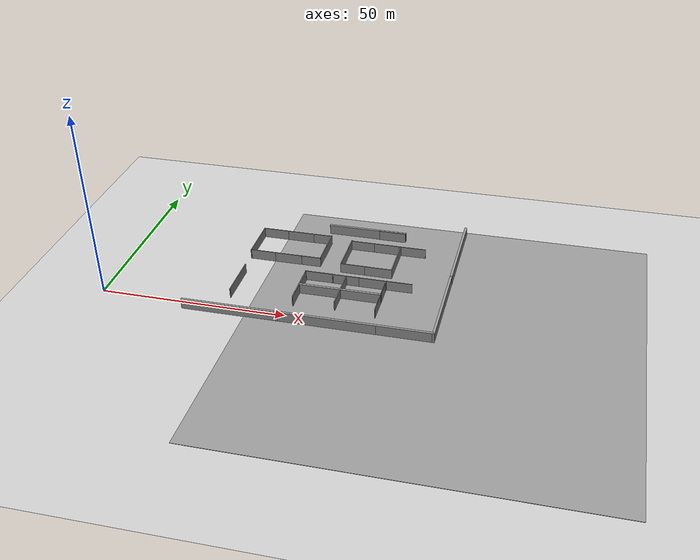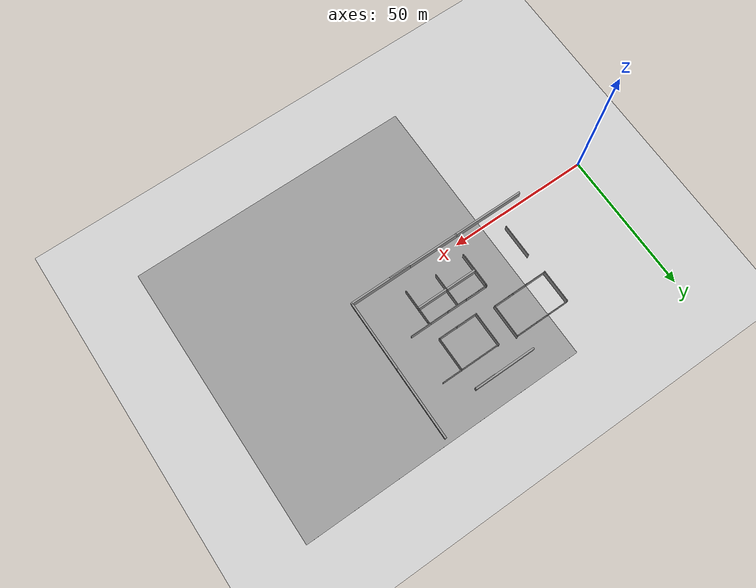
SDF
<sdf version="1.7">
 <world name="default">
  <model name="ground_plane">
   <static>1</static>
   <link name="link">
    <collision name="collision_collision">
     <geometry><plane><normal>0 0 1</normal><size>100 100</size></plane></geometry>
     <surface><friction><ode><mu>100</mu><mu2>50</mu2></ode></friction></surface>
    </collision>
    <visual name="visual">
     <cast_shadows>0</cast_shadows>
     <geometry><plane><normal>0 0 1</normal><size>100 100</size></plane></geometry>
     <material>
      <script><uri>file://media/materials/scripts/gazebo.material</uri><name>Gazebo/Grey</name></script>
     </material>
    </visual>
   </link>
  </model>
  <model name="grey_wall_long_0">
   <link name="link">
    <pose>0 0 1.37589 0 -0 0</pose>
    <inertial>
     <inertia><ixx>0</ixx><ixy>0</ixy><ixz>0</ixz><iyy>0</iyy><iyz>0</iyz><izz>0</izz></inertia>
     <mass>0</mass>
    </inertial>
    <visual name="visual">
     <cast_shadows>0</cast_shadows>
     <geometry><box><size>25.8815 0.642976 2.8</size></box></geometry>
     <material>
      <script>
       <uri>model://grey_wall/materials/scripts</uri>
       <uri>model://grey_wall/materials/textures</uri>
       <name>vrc/grey_wall</name>
      </script>
      <shader type="pixel"><normal_map>__default__</normal_map></shader>
      <ambient>1 1 1 1</ambient>
      <diffuse>1 1 1 1</diffuse>
      <specular>0 0 0 1</specular>
      <emissive>0 0 0 1</emissive>
     </material>
    </visual>
    <collision name="collision_collision">
     <geometry><box><size>25.8815 0.642976 2.8</size></box></geometry>
     <surface>
      <friction>
       <ode><mu>1</mu><mu2>1</mu2><fdir1>0 0 0</fdir1><slip1>0</slip1><slip2>0</slip2></ode>
       <torsional>
        <coefficient>1</coefficient>
        <patch_radius>0</patch_radius>
        <surface_radius>0</surface_radius>
        <use_patch_radius>1</use_patch_radius>
        <ode><slip>0</slip></ode>
       </torsional>
      </friction>
      <bounce><restitution_coefficient>0</restitution_coefficient><threshold>1e+06</threshold></bounce>
      <contact>
       <collide_without_contact>0</collide_without_contact>
       <collide_without_contact_bitmask>1</collide_without_contact_bitmask>
       <collide_bitmask>1</collide_bitmask>
       <ode>
        <soft_cfm>0</soft_cfm>
        <soft_erp>0.2</soft_erp>
        <kp>1e+13</kp>
        <kd>1</kd>
        <max_vel>0.01</max_vel>
        <min_depth>0</min_depth>
       </ode>
       <bullet>
        <split_impulse>1</split_impulse>
        <split_impulse_penetration_threshold>-0.01</split_impulse_penetration_threshold>
        <soft_cfm>0</soft_cfm>
        <soft_erp>0.2</soft_erp>
        <kp>1e+13</kp>
        <kd>1</kd>
       </bullet>
      </contact>
     </surface>
    </collision>
   </link>
   <static>1</static>
   <pose>35.9605 -2.39418 0 0 -0 0</pose>
  </model>
  <model name="grey_wall_long_1">
   <link name="link">
    <pose>0 0 1.37589 0 -0 0</pose>
    <inertial>
     <inertia><ixx>0</ixx><ixy>0</ixy><ixz>0</ixz><iyy>0</iyy><iyz>0</iyz><izz>0</izz></inertia>
     <mass>0</mass>
    </inertial>
    <visual name="visual">
     <cast_shadows>0</cast_shadows>
     <geometry><box><size>25.8815 0.642976 2.8</size></box></geometry>
     <material>
      <script>
       <uri>model://grey_wall/materials/scripts</uri>
       <uri>model://grey_wall/materials/textures</uri>
       <name>vrc/grey_wall</name>
      </script>
      <shader type="pixel"><normal_map>__default__</normal_map></shader>
      <ambient>1 1 1 1</ambient>
      <diffuse>1 1 1 1</diffuse>
      <specular>0 0 0 1</specular>
      <emissive>0 0 0 1</emissive>
     </material>
    </visual>
    <collision name="collision_collision">
     <geometry><box><size>25.8815 0.642976 2.8</size></box></geometry>
     <surface>
      <friction>
       <ode><mu>1</mu><mu2>1</mu2><fdir1>0 0 0</fdir1><slip1>0</slip1><slip2>0</slip2></ode>
       <torsional>
        <coefficient>1</coefficient>
        <patch_radius>0</patch_radius>
        <surface_radius>0</surface_radius>
        <use_patch_radius>1</use_patch_radius>
        <ode><slip>0</slip></ode>
       </torsional>
      </friction>
      <bounce><restitution_coefficient>0</restitution_coefficient><threshold>1e+06</threshold></bounce>
      <contact>
       <collide_without_contact>0</collide_without_contact>
       <collide_without_contact_bitmask>1</collide_without_contact_bitmask>
       <collide_bitmask>1</collide_bitmask>
       <ode>
        <soft_cfm>0</soft_cfm>
        <soft_erp>0.2</soft_erp>
        <kp>1e+13</kp>
        <kd>1</kd>
        <max_vel>0.01</max_vel>
        <min_depth>0</min_depth>
       </ode>
       <bullet>
        <split_impulse>1</split_impulse>
        <split_impulse_penetration_threshold>-0.01</split_impulse_penetration_threshold>
        <soft_cfm>0</soft_cfm>
        <soft_erp>0.2</soft_erp>
        <kp>1e+13</kp>
        <kd>1</kd>
       </bullet>
      </contact>
     </surface>
    </collision>
   </link>
   <static>1</static>
   <pose>61.3257 -2.37865 0 0 -0 0</pose>
  </model>
  <model name="ground_plane_1">
   <static>1</static>
   <link name="link">
    <collision name="collision_collision">
     <geometry><plane><normal>0 0 1</normal><size>100 100</size></plane></geometry>
     <surface><friction><ode><mu>100</mu><mu2>50</mu2></ode></friction></surface>
    </collision>
    <visual name="visual">
     <cast_shadows>0</cast_shadows>
     <geometry><plane><normal>0 0 1</normal><size>100 100</size></plane></geometry>
     <material>
      <script><uri>file://media/materials/scripts/gazebo.material</uri><name>Gazebo/Grey</name></script>
     </material>
    </visual>
   </link>
   <pose>89.798 0.232818 0 0 -0 0</pose>
  </model>
  <model name="grew_wall_long_vertial_1_clone_clone_1_clone">
   <model name="grey_wall_long">
    <link name="link">
     <pose>0 0 1.37589 0 -0 0</pose>
     <inertial>
      <inertia><ixx>0</ixx><ixy>0</ixy><ixz>0</ixz><iyy>0</iyy><iyz>0</iyz><izz>0</izz></inertia>
      <mass>0</mass>
     </inertial>
     <visual name="visual">
      <cast_shadows>0</cast_shadows>
      <geometry><box><size>25.8815 0.642976 2.8</size></box></geometry>
      <material>
       <script>
        <uri>model://grey_wall/materials/scripts</uri>
        <uri>model://grey_wall/materials/textures</uri>
        <name>vrc/grey_wall</name>
       </script>
       <shader type="pixel"><normal_map>__default__</normal_map></shader>
       <ambient>1 1 1 1</ambient>
       <diffuse>1 1 1 1</diffuse>
       <specular>0 0 0 1</specular>
       <emissive>0 0 0 1</emissive>
      </material>
     </visual>
     <collision name="collision_collision">
      <geometry><box><size>25.8815 0.642976 2.8</size></box></geometry>
      <surface>
       <friction>
        <ode><mu>1</mu><mu2>1</mu2><fdir1>0 0 0</fdir1><slip1>0</slip1><slip2>0</slip2></ode>
        <torsional>
         <coefficient>1</coefficient>
         <patch_radius>0</patch_radius>
         <surface_radius>0</surface_radius>
         <use_patch_radius>1</use_patch_radius>
         <ode><slip>0</slip></ode>
        </torsional>
       </friction>
       <bounce><restitution_coefficient>0</restitution_coefficient><threshold>1e+06</threshold></bounce>
       <contact>
        <collide_without_contact>0</collide_without_contact>
        <collide_without_contact_bitmask>1</collide_without_contact_bitmask>
        <collide_bitmask>1</collide_bitmask>
        <ode>
         <soft_cfm>0</soft_cfm>
         <soft_erp>0.2</soft_erp>
         <kp>1e+13</kp>
         <kd>1</kd>
         <max_vel>0.01</max_vel>
         <min_depth>0</min_depth>
        </ode>
        <bullet>
         <split_impulse>1</split_impulse>
         <split_impulse_penetration_threshold>-0.01</split_impulse_penetration_threshold>
         <soft_cfm>0</soft_cfm>
         <soft_erp>0.2</soft_erp>
         <kp>1e+13</kp>
         <kd>1</kd>
        </bullet>
       </contact>
      </surface>
     </collision>
    </link>
    <static>1</static>
    <pose>1e-06 -0 0 0 -0 1.57003</pose>
   </model>
   <static>0</static>
   <pose>88.7842 10.2506 0 0 -0 0</pose>
  </model>
  <model name="grew_wall_long_vertial_1_clone_clone_1_clone_0">
   <model name="grey_wall_long">
    <link name="link">
     <pose>0 0 1.37589 0 -0 0</pose>
     <inertial>
      <inertia><ixx>0</ixx><ixy>0</ixy><ixz>0</ixz><iyy>0</iyy><iyz>0</iyz><izz>0</izz></inertia>
      <mass>0</mass>
     </inertial>
     <visual name="visual">
      <cast_shadows>0</cast_shadows>
      <geometry><box><size>25.8815 0.642976 2.8</size></box></geometry>
      <material>
       <script>
        <uri>model://grey_wall/materials/scripts</uri>
        <uri>model://grey_wall/materials/textures</uri>
        <name>vrc/grey_wall</name>
       </script>
       <shader type="pixel"><normal_map>__default__</normal_map></shader>
       <ambient>1 1 1 1</ambient>
       <diffuse>1 1 1 1</diffuse>
       <specular>0 0 0 1</specular>
       <emissive>0 0 0 1</emissive>
      </material>
     </visual>
     <collision name="collision_collision">
      <geometry><box><size>25.8815 0.642976 2.8</size></box></geometry>
      <surface>
       <friction>
        <ode><mu>1</mu><mu2>1</mu2><fdir1>0 0 0</fdir1><slip1>0</slip1><slip2>0</slip2></ode>
        <torsional>
         <coefficient>1</coefficient>
         <patch_radius>0</patch_radius>
         <surface_radius>0</surface_radius>
         <use_patch_radius>1</use_patch_radius>
         <ode><slip>0</slip></ode>
        </torsional>
       </friction>
       <bounce><restitution_coefficient>0</restitution_coefficient><threshold>1e+06</threshold></bounce>
       <contact>
        <collide_without_contact>0</collide_without_contact>
        <collide_without_contact_bitmask>1</collide_without_contact_bitmask>
        <collide_bitmask>1</collide_bitmask>
        <ode>
         <soft_cfm>0</soft_cfm>
         <soft_erp>0.2</soft_erp>
         <kp>1e+13</kp>
         <kd>1</kd>
         <max_vel>0.01</max_vel>
         <min_depth>0</min_depth>
        </ode>
        <bullet>
         <split_impulse>1</split_impulse>
         <split_impulse_penetration_threshold>-0.01</split_impulse_penetration_threshold>
         <soft_cfm>0</soft_cfm>
         <soft_erp>0.2</soft_erp>
         <kp>1e+13</kp>
         <kd>1</kd>
        </bullet>
       </contact>
      </surface>
     </collision>
    </link>
    <static>1</static>
    <pose>1e-06 -0 0 0 -0 1.57003</pose>
   </model>
   <static>0</static>
   <pose>88.8179 35.6019 0 0 -0 0</pose>
  </model>
  <model name="grey_wall_long_term_clone_0_clone_0">
   <link name="link">
    <pose>-1.74587 -0.378849 1.37589 0 -0 0</pose>
    <inertial>
     <inertia><ixx>0</ixx><ixy>0</ixy><ixz>0</ixz><iyy>0</iyy><iyz>0</iyz><izz>0</izz></inertia>
     <mass>0</mass>
    </inertial>
    <visual name="visual">
     <cast_shadows>0</cast_shadows>
     <geometry><box><size>22.1596 0.642976 2.8</size></box></geometry>
     <material>
      <script>
       <uri>model://grey_wall/materials/scripts</uri>
       <uri>model://grey_wall/materials/textures</uri>
       <name>vrc/grey_wall</name>
      </script>
      <shader type="pixel"><normal_map>__default__</normal_map></shader>
      <ambient>1 1 1 1</ambient>
      <diffuse>1 1 1 1</diffuse>
      <specular>0 0 0 1</specular>
      <emissive>0 0 0 1</emissive>
     </material>
    </visual>
    <collision name="collision_collision">
     <geometry><box><size>22.1596 0.642976 2.8</size></box></geometry>
     <surface>
      <friction>
       <ode><mu>1</mu><mu2>1</mu2><fdir1>0 0 0</fdir1><slip1>0</slip1><slip2>0</slip2></ode>
       <torsional>
        <coefficient>1</coefficient>
        <patch_radius>0</patch_radius>
        <surface_radius>0</surface_radius>
        <use_patch_radius>1</use_patch_radius>
        <ode><slip>0</slip></ode>
       </torsional>
      </friction>
      <bounce><restitution_coefficient>0</restitution_coefficient><threshold>1e+06</threshold></bounce>
      <contact>
       <collide_without_contact>0</collide_without_contact>
       <collide_without_contact_bitmask>1</collide_without_contact_bitmask>
       <collide_bitmask>1</collide_bitmask>
       <ode>
        <soft_cfm>0</soft_cfm>
        <soft_erp>0.2</soft_erp>
        <kp>1e+13</kp>
        <kd>1</kd>
        <max_vel>0.01</max_vel>
        <min_depth>0</min_depth>
       </ode>
       <bullet>
        <split_impulse>1</split_impulse>
        <split_impulse_penetration_threshold>-0.01</split_impulse_penetration_threshold>
        <soft_cfm>0</soft_cfm>
        <soft_erp>0.2</soft_erp>
        <kp>1e+13</kp>
        <kd>1</kd>
       </bullet>
      </contact>
     </surface>
    </collision>
   </link>
   <static>1</static>
   <pose>79.4268 -1.97771 0 0 -0 0</pose>
  </model>
  <model name="grey_wall_12m_vertial_1_clone_0_clone_0_clone_1">
   <link name="link">
    <pose>0.289112 -0.003891 1.4 0 0 -1.5701</pose>
    <inertial>
     <inertia><ixx>0</ixx><ixy>0</ixy><ixz>0</ixz><iyy>0</iyy><iyz>0</iyz><izz>0</izz></inertia>
     <mass>0</mass>
    </inertial>
    <visual name="visual">
     <cast_shadows>0</cast_shadows>
     <geometry><box><size>12.0527 0.2 2.8</size></box></geometry>
     <material>
      <script>
       <uri>model://grey_wall/materials/scripts</uri>
       <uri>model://grey_wall/materials/textures</uri>
       <name>vrc/grey_wall</name>
      </script>
      <shader type="pixel"/>
      <ambient>1 1 1 1</ambient>
      <diffuse>1 1 1 1</diffuse>
      <specular>0 0 0 1</specular>
      <emissive>0 0 0 1</emissive>
     </material>
    </visual>
    <collision name="collision_collision">
     <geometry><box><size>12.0527 0.2 2.8</size></box></geometry>
     <surface>
      <friction>
       <ode><mu>1</mu><mu2>1</mu2><fdir1>0 0 0</fdir1><slip1>0</slip1><slip2>0</slip2></ode>
       <torsional>
        <coefficient>1</coefficient>
        <patch_radius>0</patch_radius>
        <surface_radius>0</surface_radius>
        <use_patch_radius>1</use_patch_radius>
        <ode><slip>0</slip></ode>
       </torsional>
      </friction>
      <bounce><restitution_coefficient>0</restitution_coefficient><threshold>1e+06</threshold></bounce>
      <contact>
       <collide_without_contact>0</collide_without_contact>
       <collide_without_contact_bitmask>1</collide_without_contact_bitmask>
       <collide_bitmask>1</collide_bitmask>
       <ode>
        <soft_cfm>0</soft_cfm>
        <soft_erp>0.2</soft_erp>
        <kp>1e+13</kp>
        <kd>1</kd>
        <max_vel>0.01</max_vel>
        <min_depth>0</min_depth>
       </ode>
       <bullet>
        <split_impulse>1</split_impulse>
        <split_impulse_penetration_threshold>-0.01</split_impulse_penetration_threshold>
        <soft_cfm>0</soft_cfm>
        <soft_erp>0.2</soft_erp>
        <kp>1e+13</kp>
        <kd>1</kd>
       </bullet>
      </contact>
     </surface>
    </collision>
   </link>
   <static>1</static>
   <pose>50.3724 10.4401 0 0 -0 0</pose>
  </model>
  <model name="grey_wall_12m_vertial_2_clone_clone_1_clone_1">
   <link name="link">
    <pose>0.289112 -0.003891 1.4 0 0 -1.5701</pose>
    <inertial>
     <inertia><ixx>0</ixx><ixy>0</ixy><ixz>0</ixz><iyy>0</iyy><iyz>0</iyz><izz>0</izz></inertia>
     <mass>0</mass>
    </inertial>
    <visual name="visual">
     <cast_shadows>0</cast_shadows>
     <geometry><box><size>12.0527 0.2 2.8</size></box></geometry>
     <material>
      <script>
       <uri>model://grey_wall/materials/scripts</uri>
       <uri>model://grey_wall/materials/textures</uri>
       <name>vrc/grey_wall</name>
      </script>
      <shader type="pixel"/>
      <ambient>1 1 1 1</ambient>
      <diffuse>1 1 1 1</diffuse>
      <specular>0 0 0 1</specular>
      <emissive>0 0 0 1</emissive>
     </material>
    </visual>
    <collision name="collision_collision">
     <geometry><box><size>12.0527 0.2 2.8</size></box></geometry>
     <surface>
      <friction>
       <ode><mu>1</mu><mu2>1</mu2><fdir1>0 0 0</fdir1><slip1>0</slip1><slip2>0</slip2></ode>
       <torsional>
        <coefficient>1</coefficient>
        <patch_radius>0</patch_radius>
        <surface_radius>0</surface_radius>
        <use_patch_radius>1</use_patch_radius>
        <ode><slip>0</slip></ode>
       </torsional>
      </friction>
      <bounce><restitution_coefficient>0</restitution_coefficient><threshold>1e+06</threshold></bounce>
      <contact>
       <collide_without_contact>0</collide_without_contact>
       <collide_without_contact_bitmask>1</collide_without_contact_bitmask>
       <collide_bitmask>1</collide_bitmask>
       <ode>
        <soft_cfm>0</soft_cfm>
        <soft_erp>0.2</soft_erp>
        <kp>1e+13</kp>
        <kd>1</kd>
        <max_vel>0.01</max_vel>
        <min_depth>0</min_depth>
       </ode>
       <bullet>
        <split_impulse>1</split_impulse>
        <split_impulse_penetration_threshold>-0.01</split_impulse_penetration_threshold>
        <soft_cfm>0</soft_cfm>
        <soft_erp>0.2</soft_erp>
        <kp>1e+13</kp>
        <kd>1</kd>
       </bullet>
      </contact>
     </surface>
    </collision>
   </link>
   <static>1</static>
   <pose>72.2328 9.92889 0 0 -0 0</pose>
  </model>
  <model name="grey_wall_12m_vertial_2_clone_clone_1_clone_2">
   <link name="link">
    <pose>0.289112 -0.003891 1.4 0 0 -1.5701</pose>
    <inertial>
     <inertia><ixx>0</ixx><ixy>0</ixy><ixz>0</ixz><iyy>0</iyy><iyz>0</iyz><izz>0</izz></inertia>
     <mass>0</mass>
    </inertial>
    <visual name="visual">
     <cast_shadows>0</cast_shadows>
     <geometry><box><size>12.0527 0.2 2.8</size></box></geometry>
     <material>
      <script>
       <uri>model://grey_wall/materials/scripts</uri>
       <uri>model://grey_wall/materials/textures</uri>
       <name>vrc/grey_wall</name>
      </script>
      <shader type="pixel"/>
      <ambient>1 1 1 1</ambient>
      <diffuse>1 1 1 1</diffuse>
      <specular>0 0 0 1</specular>
      <emissive>0 0 0 1</emissive>
     </material>
    </visual>
    <collision name="collision_collision">
     <geometry><box><size>12.0527 0.2 2.8</size></box></geometry>
     <surface>
      <friction>
       <ode><mu>1</mu><mu2>1</mu2><fdir1>0 0 0</fdir1><slip1>0</slip1><slip2>0</slip2></ode>
       <torsional>
        <coefficient>1</coefficient>
        <patch_radius>0</patch_radius>
        <surface_radius>0</surface_radius>
        <use_patch_radius>1</use_patch_radius>
        <ode><slip>0</slip></ode>
       </torsional>
      </friction>
      <bounce><restitution_coefficient>0</restitution_coefficient><threshold>1e+06</threshold></bounce>
      <contact>
       <collide_without_contact>0</collide_without_contact>
       <collide_without_contact_bitmask>1</collide_without_contact_bitmask>
       <collide_bitmask>1</collide_bitmask>
       <ode>
        <soft_cfm>0</soft_cfm>
        <soft_erp>0.2</soft_erp>
        <kp>1e+13</kp>
        <kd>1</kd>
        <max_vel>0.01</max_vel>
        <min_depth>0</min_depth>
       </ode>
       <bullet>
        <split_impulse>1</split_impulse>
        <split_impulse_penetration_threshold>-0.01</split_impulse_penetration_threshold>
        <soft_cfm>0</soft_cfm>
        <soft_erp>0.2</soft_erp>
        <kp>1e+13</kp>
        <kd>1</kd>
       </bullet>
      </contact>
     </surface>
    </collision>
   </link>
   <static>1</static>
   <pose>72.2088 10.9656 0 0 -0 0</pose>
  </model>
  <model name="grey_wall_12m_vertial_2_clone_clone_1_clone_3">
   <link name="link">
    <pose>0.289112 -0.003891 1.4 0 0 -1.5701</pose>
    <inertial>
     <inertia><ixx>0</ixx><ixy>0</ixy><ixz>0</ixz><iyy>0</iyy><iyz>0</iyz><izz>0</izz></inertia>
     <mass>0</mass>
    </inertial>
    <visual name="visual">
     <cast_shadows>0</cast_shadows>
     <geometry><box><size>12.0527 0.2 2.8</size></box></geometry>
     <material>
      <script>
       <uri>model://grey_wall/materials/scripts</uri>
       <uri>model://grey_wall/materials/textures</uri>
       <name>vrc/grey_wall</name>
      </script>
      <shader type="pixel"/>
      <ambient>1 1 1 1</ambient>
      <diffuse>1 1 1 1</diffuse>
      <specular>0 0 0 1</specular>
      <emissive>0 0 0 1</emissive>
     </material>
    </visual>
    <collision name="collision_collision">
     <geometry><box><size>12.0527 0.2 2.8</size></box></geometry>
     <surface>
      <friction>
       <ode><mu>1</mu><mu2>1</mu2><fdir1>0 0 0</fdir1><slip1>0</slip1><slip2>0</slip2></ode>
       <torsional>
        <coefficient>1</coefficient>
        <patch_radius>0</patch_radius>
        <surface_radius>0</surface_radius>
        <use_patch_radius>1</use_patch_radius>
        <ode><slip>0</slip></ode>
       </torsional>
      </friction>
      <bounce><restitution_coefficient>0</restitution_coefficient><threshold>1e+06</threshold></bounce>
      <contact>
       <collide_without_contact>0</collide_without_contact>
       <collide_without_contact_bitmask>1</collide_without_contact_bitmask>
       <collide_bitmask>1</collide_bitmask>
       <ode>
        <soft_cfm>0</soft_cfm>
        <soft_erp>0.2</soft_erp>
        <kp>1e+13</kp>
        <kd>1</kd>
        <max_vel>0.01</max_vel>
        <min_depth>0</min_depth>
       </ode>
       <bullet>
        <split_impulse>1</split_impulse>
        <split_impulse_penetration_threshold>-0.01</split_impulse_penetration_threshold>
        <soft_cfm>0</soft_cfm>
        <soft_erp>0.2</soft_erp>
        <kp>1e+13</kp>
        <kd>1</kd>
       </bullet>
      </contact>
     </surface>
    </collision>
   </link>
   <static>1</static>
   <pose>72.4741 28.4422 0 0 -0 0</pose>
  </model>
  <model name="grey_wall_0_clone_clone_clone_4_clone_1">
   <static>1</static>
   <link name="link">
    <pose>0 0 1.4 0 -0 0</pose>
    <collision name="collision_collision"><geometry><box><size>7.5 0.2 2.8</size></box></geometry></collision>
    <visual name="visual">
     <cast_shadows>0</cast_shadows>
     <geometry><box><size>7.5 0.2 2.8</size></box></geometry>
     <material>
      <script>
       <uri>model://grey_wall/materials/scripts</uri>
       <uri>model://grey_wall/materials/textures</uri>
       <name>vrc/grey_wall</name>
      </script>
     </material>
    </visual>
   </link>
   <pose>68.9422 41.2905 0 0 -0 0</pose>
  </model>
  <model name="grey_wall_0_clone_clone_clone_4_clone_2">
   <static>1</static>
   <link name="link">
    <pose>0 0 1.4 0 -0 0</pose>
    <collision name="collision_collision"><geometry><box><size>7.5 0.2 2.8</size></box></geometry></collision>
    <visual name="visual">
     <cast_shadows>0</cast_shadows>
     <geometry><box><size>7.5 0.2 2.8</size></box></geometry>
     <material>
      <script>
       <uri>model://grey_wall/materials/scripts</uri>
       <uri>model://grey_wall/materials/textures</uri>
       <name>vrc/grey_wall</name>
      </script>
     </material>
    </visual>
   </link>
   <pose>69.0526 34.3787 0 0 -0 0</pose>
  </model>
  <model name="grey_wall_0_clone_clone_clone_4_clone_3">
   <static>1</static>
   <link name="link">
    <pose>0 0 1.4 0 -0 0</pose>
    <collision name="collision_collision"><geometry><box><size>7.5 0.2 2.8</size></box></geometry></collision>
    <visual name="visual">
     <cast_shadows>0</cast_shadows>
     <geometry><box><size>7.5 0.2 2.8</size></box></geometry>
     <material>
      <script>
       <uri>model://grey_wall/materials/scripts</uri>
       <uri>model://grey_wall/materials/textures</uri>
       <name>vrc/grey_wall</name>
      </script>
     </material>
    </visual>
   </link>
   <pose>69.0684 22.4925 0 0 -0 0</pose>
  </model>
  <model name="grey_wall_0_clone_clone_clone_4_clone_4">
   <static>1</static>
   <link name="link">
    <pose>0 0 1.4 0 -0 0</pose>
    <collision name="collision_collision"><geometry><box><size>7.5 0.2 2.8</size></box></geometry></collision>
    <visual name="visual">
     <cast_shadows>0</cast_shadows>
     <geometry><box><size>7.5 0.2 2.8</size></box></geometry>
     <material>
      <script>
       <uri>model://grey_wall/materials/scripts</uri>
       <uri>model://grey_wall/materials/textures</uri>
       <name>vrc/grey_wall</name>
      </script>
     </material>
    </visual>
   </link>
   <pose>68.8459 16.9594 0 0 -0 0</pose>
  </model>
  <model name="grey_wall_12m_vertial_1_clone_0_clone_1_clone">
   <link name="link">
    <pose>0.289112 -0.003891 1.4 0 0 -1.5701</pose>
    <inertial>
     <inertia><ixx>0</ixx><ixy>0</ixy><ixz>0</ixz><iyy>0</iyy><iyz>0</iyz><izz>0</izz></inertia>
     <mass>0</mass>
    </inertial>
    <visual name="visual">
     <cast_shadows>0</cast_shadows>
     <geometry><box><size>12.0527 0.2 2.8</size></box></geometry>
     <material>
      <script>
       <uri>model://grey_wall/materials/scripts</uri>
       <uri>model://grey_wall/materials/textures</uri>
       <name>vrc/grey_wall</name>
      </script>
      <shader type="pixel"/>
      <ambient>1 1 1 1</ambient>
      <diffuse>1 1 1 1</diffuse>
      <specular>0 0 0 1</specular>
      <emissive>0 0 0 1</emissive>
     </material>
    </visual>
    <collision name="collision_collision">
     <geometry><box><size>12.0527 0.2 2.8</size></box></geometry>
     <surface>
      <friction>
       <ode><mu>1</mu><mu2>1</mu2><fdir1>0 0 0</fdir1><slip1>0</slip1><slip2>0</slip2></ode>
       <torsional>
        <coefficient>1</coefficient>
        <patch_radius>0</patch_radius>
        <surface_radius>0</surface_radius>
        <use_patch_radius>1</use_patch_radius>
        <ode><slip>0</slip></ode>
       </torsional>
      </friction>
      <bounce><restitution_coefficient>0</restitution_coefficient><threshold>1e+06</threshold></bounce>
      <contact>
       <collide_without_contact>0</collide_without_contact>
       <collide_without_contact_bitmask>1</collide_without_contact_bitmask>
       <collide_bitmask>1</collide_bitmask>
       <ode>
        <soft_cfm>0</soft_cfm>
        <soft_erp>0.2</soft_erp>
        <kp>1e+13</kp>
        <kd>1</kd>
        <max_vel>0.01</max_vel>
        <min_depth>0</min_depth>
       </ode>
       <bullet>
        <split_impulse>1</split_impulse>
        <split_impulse_penetration_threshold>-0.01</split_impulse_penetration_threshold>
        <soft_cfm>0</soft_cfm>
        <soft_erp>0.2</soft_erp>
        <kp>1e+13</kp>
        <kd>1</kd>
       </bullet>
      </contact>
     </surface>
    </collision>
   </link>
   <static>1</static>
   <pose>33.4027 10.5536 0 0 -0 0</pose>
  </model>
  <model name="grey_wall_0_clone_clone_clone_4_clone_4_clone">
   <static>1</static>
   <link name="link">
    <pose>0 0 1.4 0 -0 0</pose>
    <collision name="collision_collision"><geometry><box><size>7.5 0.2 2.8</size></box></geometry></collision>
    <visual name="visual">
     <cast_shadows>0</cast_shadows>
     <geometry><box><size>7.5 0.2 2.8</size></box></geometry>
     <material>
      <script>
       <uri>model://grey_wall/materials/scripts</uri>
       <uri>model://grey_wall/materials/textures</uri>
       <name>vrc/grey_wall</name>
      </script>
     </material>
    </visual>
   </link>
   <pose>61.8348 16.9712 0 0 -0 0</pose>
  </model>
  <model name="grey_wall_0_clone_clone_clone_4_clone_4_clone_0">
   <static>1</static>
   <link name="link">
    <pose>0 0 1.4 0 -0 0</pose>
    <collision name="collision_collision"><geometry><box><size>7.5 0.2 2.8</size></box></geometry></collision>
    <visual name="visual">
     <cast_shadows>0</cast_shadows>
     <geometry><box><size>7.5 0.2 2.8</size></box></geometry>
     <material>
      <script>
       <uri>model://grey_wall/materials/scripts</uri>
       <uri>model://grey_wall/materials/textures</uri>
       <name>vrc/grey_wall</name>
      </script>
     </material>
    </visual>
   </link>
   <pose>54.7741 17.0436 0 0 -0 0</pose>
  </model>
  <model name="grey_wall_0_clone_clone_clone_4_clone_4_clone_1">
   <static>1</static>
   <link name="link">
    <pose>0 0 1.4 0 -0 0</pose>
    <collision name="collision_collision"><geometry><box><size>7.5 0.2 2.8</size></box></geometry></collision>
    <visual name="visual">
     <cast_shadows>0</cast_shadows>
     <geometry><box><size>7.5 0.2 2.8</size></box></geometry>
     <material>
      <script>
       <uri>model://grey_wall/materials/scripts</uri>
       <uri>model://grey_wall/materials/textures</uri>
       <name>vrc/grey_wall</name>
      </script>
     </material>
    </visual>
   </link>
   <pose>54.139 17.0107 0 0 -0 0</pose>
  </model>
  <model name="grey_wall_12m_vertial_1_clone_0_clone_0_clone_1_clone">
   <link name="link">
    <pose>0.289112 -0.003891 1.4 0 0 -1.5701</pose>
    <inertial>
     <inertia><ixx>0</ixx><ixy>0</ixy><ixz>0</ixz><iyy>0</iyy><iyz>0</iyz><izz>0</izz></inertia>
     <mass>0</mass>
    </inertial>
    <visual name="visual">
     <cast_shadows>0</cast_shadows>
     <geometry><box><size>12.0527 0.2 2.8</size></box></geometry>
     <material>
      <script>
       <uri>model://grey_wall/materials/scripts</uri>
       <uri>model://grey_wall/materials/textures</uri>
       <name>vrc/grey_wall</name>
      </script>
      <shader type="pixel"/>
      <ambient>1 1 1 1</ambient>
      <diffuse>1 1 1 1</diffuse>
      <specular>0 0 0 1</specular>
      <emissive>0 0 0 1</emissive>
     </material>
    </visual>
    <collision name="collision_collision">
     <geometry><box><size>12.0527 0.2 2.8</size></box></geometry>
     <surface>
      <friction>
       <ode><mu>1</mu><mu2>1</mu2><fdir1>0 0 0</fdir1><slip1>0</slip1><slip2>0</slip2></ode>
       <torsional>
        <coefficient>1</coefficient>
        <patch_radius>0</patch_radius>
        <surface_radius>0</surface_radius>
        <use_patch_radius>1</use_patch_radius>
        <ode><slip>0</slip></ode>
       </torsional>
      </friction>
      <bounce><restitution_coefficient>0</restitution_coefficient><threshold>1e+06</threshold></bounce>
      <contact>
       <collide_without_contact>0</collide_without_contact>
       <collide_without_contact_bitmask>1</collide_without_contact_bitmask>
       <collide_bitmask>1</collide_bitmask>
       <ode>
        <soft_cfm>0</soft_cfm>
        <soft_erp>0.2</soft_erp>
        <kp>1e+13</kp>
        <kd>1</kd>
        <max_vel>0.01</max_vel>
        <min_depth>0</min_depth>
       </ode>
       <bullet>
        <split_impulse>1</split_impulse>
        <split_impulse_penetration_threshold>-0.01</split_impulse_penetration_threshold>
        <soft_cfm>0</soft_cfm>
        <soft_erp>0.2</soft_erp>
        <kp>1e+13</kp>
        <kd>1</kd>
       </bullet>
      </contact>
     </surface>
    </collision>
   </link>
   <static>1</static>
   <pose>50.2512 11.1541 0 0 -0 0</pose>
  </model>
  <model name="grey_wall_12m_vertial_2_clone_clone_2_clone_0">
   <link name="link">
    <pose>0.289112 -0.003891 1.4 0 0 -1.5701</pose>
    <inertial>
     <inertia><ixx>0</ixx><ixy>0</ixy><ixz>0</ixz><iyy>0</iyy><iyz>0</iyz><izz>0</izz></inertia>
     <mass>0</mass>
    </inertial>
    <visual name="visual">
     <cast_shadows>0</cast_shadows>
     <geometry><box><size>12.0527 0.2 2.8</size></box></geometry>
     <material>
      <script>
       <uri>model://grey_wall/materials/scripts</uri>
       <uri>model://grey_wall/materials/textures</uri>
       <name>vrc/grey_wall</name>
      </script>
      <shader type="pixel"/>
      <ambient>1 1 1 1</ambient>
      <diffuse>1 1 1 1</diffuse>
      <specular>0 0 0 1</specular>
      <emissive>0 0 0 1</emissive>
     </material>
    </visual>
    <collision name="collision_collision">
     <geometry><box><size>12.0527 0.2 2.8</size></box></geometry>
     <surface>
      <friction>
       <ode><mu>1</mu><mu2>1</mu2><fdir1>0 0 0</fdir1><slip1>0</slip1><slip2>0</slip2></ode>
       <torsional>
        <coefficient>1</coefficient>
        <patch_radius>0</patch_radius>
        <surface_radius>0</surface_radius>
        <use_patch_radius>1</use_patch_radius>
        <ode><slip>0</slip></ode>
       </torsional>
      </friction>
      <bounce><restitution_coefficient>0</restitution_coefficient><threshold>1e+06</threshold></bounce>
      <contact>
       <collide_without_contact>0</collide_without_contact>
       <collide_without_contact_bitmask>1</collide_without_contact_bitmask>
       <collide_bitmask>1</collide_bitmask>
       <ode>
        <soft_cfm>0</soft_cfm>
        <soft_erp>0.2</soft_erp>
        <kp>1e+13</kp>
        <kd>1</kd>
        <max_vel>0.01</max_vel>
        <min_depth>0</min_depth>
       </ode>
       <bullet>
        <split_impulse>1</split_impulse>
        <split_impulse_penetration_threshold>-0.01</split_impulse_penetration_threshold>
        <soft_cfm>0</soft_cfm>
        <soft_erp>0.2</soft_erp>
        <kp>1e+13</kp>
        <kd>1</kd>
       </bullet>
      </contact>
     </surface>
    </collision>
   </link>
   <static>1</static>
   <pose>58.4644 28.6618 0 0 -0 0</pose>
  </model>
  <model name="grey_wall_0_clone_clone_clone_4_clone_2_clone">
   <static>1</static>
   <link name="link">
    <pose>0 0 1.4 0 -0 0</pose>
    <collision name="collision_collision"><geometry><box><size>7.5 0.2 2.8</size></box></geometry></collision>
    <visual name="visual">
     <cast_shadows>0</cast_shadows>
     <geometry><box><size>7.5 0.2 2.8</size></box></geometry>
     <material>
      <script>
       <uri>model://grey_wall/materials/scripts</uri>
       <uri>model://grey_wall/materials/textures</uri>
       <name>vrc/grey_wall</name>
      </script>
     </material>
    </visual>
   </link>
   <pose>62.5255 34.3852 0 0 -0 0</pose>
  </model>
  <model name="grey_wall_0_clone_clone_clone_4_clone_3_clone">
   <static>1</static>
   <link name="link">
    <pose>0 0 1.4 0 -0 0</pose>
    <collision name="collision_collision"><geometry><box><size>7.5 0.2 2.8</size></box></geometry></collision>
    <visual name="visual">
     <cast_shadows>0</cast_shadows>
     <geometry><box><size>7.5 0.2 2.8</size></box></geometry>
     <material>
      <script>
       <uri>model://grey_wall/materials/scripts</uri>
       <uri>model://grey_wall/materials/textures</uri>
       <name>vrc/grey_wall</name>
      </script>
     </material>
    </visual>
   </link>
   <pose>62.392 22.5411 0 0 -0 0</pose>
  </model>
  <model name="grey_wall_long_term_clone_0_clone_1">
   <link name="link">
    <pose>-1.74587 -0.378849 1.37589 0 -0 0</pose>
    <inertial>
     <inertia><ixx>0</ixx><ixy>0</ixy><ixz>0</ixz><iyy>0</iyy><iyz>0</iyz><izz>0</izz></inertia>
     <mass>0</mass>
    </inertial>
    <visual name="visual">
     <cast_shadows>0</cast_shadows>
     <geometry><box><size>22.1596 0.642976 2.8</size></box></geometry>
     <material>
      <script>
       <uri>model://grey_wall/materials/scripts</uri>
       <uri>model://grey_wall/materials/textures</uri>
       <name>vrc/grey_wall</name>
      </script>
      <shader type="pixel"><normal_map>__default__</normal_map></shader>
      <ambient>1 1 1 1</ambient>
      <diffuse>1 1 1 1</diffuse>
      <specular>0 0 0 1</specular>
      <emissive>0 0 0 1</emissive>
     </material>
    </visual>
    <collision name="collision_collision">
     <geometry><box><size>22.1596 0.642976 2.8</size></box></geometry>
     <surface>
      <friction>
       <ode><mu>1</mu><mu2>1</mu2><fdir1>0 0 0</fdir1><slip1>0</slip1><slip2>0</slip2></ode>
       <torsional>
        <coefficient>1</coefficient>
        <patch_radius>0</patch_radius>
        <surface_radius>0</surface_radius>
        <use_patch_radius>1</use_patch_radius>
        <ode><slip>0</slip></ode>
       </torsional>
      </friction>
      <bounce><restitution_coefficient>0</restitution_coefficient><threshold>1e+06</threshold></bounce>
      <contact>
       <collide_without_contact>0</collide_without_contact>
       <collide_without_contact_bitmask>1</collide_without_contact_bitmask>
       <collide_bitmask>1</collide_bitmask>
       <ode>
        <soft_cfm>0</soft_cfm>
        <soft_erp>0.2</soft_erp>
        <kp>1e+13</kp>
        <kd>1</kd>
        <max_vel>0.01</max_vel>
        <min_depth>0</min_depth>
       </ode>
       <bullet>
        <split_impulse>1</split_impulse>
        <split_impulse_penetration_threshold>-0.01</split_impulse_penetration_threshold>
        <soft_cfm>0</soft_cfm>
        <soft_erp>0.2</soft_erp>
        <kp>1e+13</kp>
        <kd>1</kd>
       </bullet>
      </contact>
     </surface>
    </collision>
   </link>
   <static>1</static>
   <pose>63.4171 41.9995 0 0 -0 0</pose>
  </model>
  <model name="grey_wall_12m_vertial_1_clone_0_clone_0_clone_clone_clone_0">
   <link name="link">
    <pose>0.289112 -0.003891 1.4 0 0 -1.5701</pose>
    <inertial>
     <inertia><ixx>0</ixx><ixy>0</ixy><ixz>0</ixz><iyy>0</iyy><iyz>0</iyz><izz>0</izz></inertia>
     <mass>0</mass>
    </inertial>
    <visual name="visual">
     <cast_shadows>0</cast_shadows>
     <geometry><box><size>12.0527 0.2 2.8</size></box></geometry>
     <material>
      <script>
       <uri>model://grey_wall/materials/scripts</uri>
       <uri>model://grey_wall/materials/textures</uri>
       <name>vrc/grey_wall</name>
      </script>
      <shader type="pixel"/>
      <ambient>1 1 1 1</ambient>
      <diffuse>1 1 1 1</diffuse>
      <specular>0 0 0 1</specular>
      <emissive>0 0 0 1</emissive>
     </material>
    </visual>
    <collision name="collision_collision">
     <geometry><box><size>12.0527 0.2 2.8</size></box></geometry>
     <surface>
      <friction>
       <ode><mu>1</mu><mu2>1</mu2><fdir1>0 0 0</fdir1><slip1>0</slip1><slip2>0</slip2></ode>
       <torsional>
        <coefficient>1</coefficient>
        <patch_radius>0</patch_radius>
        <surface_radius>0</surface_radius>
        <use_patch_radius>1</use_patch_radius>
        <ode><slip>0</slip></ode>
       </torsional>
      </friction>
      <bounce><restitution_coefficient>0</restitution_coefficient><threshold>1e+06</threshold></bounce>
      <contact>
       <collide_without_contact>0</collide_without_contact>
       <collide_without_contact_bitmask>1</collide_without_contact_bitmask>
       <collide_bitmask>1</collide_bitmask>
       <ode>
        <soft_cfm>0</soft_cfm>
        <soft_erp>0.2</soft_erp>
        <kp>1e+13</kp>
        <kd>1</kd>
        <max_vel>0.01</max_vel>
        <min_depth>0</min_depth>
       </ode>
       <bullet>
        <split_impulse>1</split_impulse>
        <split_impulse_penetration_threshold>-0.01</split_impulse_penetration_threshold>
        <soft_cfm>0</soft_cfm>
        <soft_erp>0.2</soft_erp>
        <kp>1e+13</kp>
        <kd>1</kd>
       </bullet>
      </contact>
     </surface>
    </collision>
   </link>
   <static>1</static>
   <pose>32.5243 29.713 0 0 -0 0</pose>
  </model>
  <model name="grey_wall_12m_vertial_1_clone_0_clone_0_clone_clone_clone_clone">
   <link name="link">
    <pose>0.289112 -0.003891 1.4 0 0 -1.5701</pose>
    <inertial>
     <inertia><ixx>0</ixx><ixy>0</ixy><ixz>0</ixz><iyy>0</iyy><iyz>0</iyz><izz>0</izz></inertia>
     <mass>0</mass>
    </inertial>
    <visual name="visual">
     <cast_shadows>0</cast_shadows>
     <geometry><box><size>12.0527 0.2 2.8</size></box></geometry>
     <material>
      <script>
       <uri>model://grey_wall/materials/scripts</uri>
       <uri>model://grey_wall/materials/textures</uri>
       <name>vrc/grey_wall</name>
      </script>
      <shader type="pixel"/>
      <ambient>1 1 1 1</ambient>
      <diffuse>1 1 1 1</diffuse>
      <specular>0 0 0 1</specular>
      <emissive>0 0 0 1</emissive>
     </material>
    </visual>
    <collision name="collision_collision">
     <geometry><box><size>12.0527 0.2 2.8</size></box></geometry>
     <surface>
      <friction>
       <ode><mu>1</mu><mu2>1</mu2><fdir1>0 0 0</fdir1><slip1>0</slip1><slip2>0</slip2></ode>
       <torsional>
        <coefficient>1</coefficient>
        <patch_radius>0</patch_radius>
        <surface_radius>0</surface_radius>
        <use_patch_radius>1</use_patch_radius>
        <ode><slip>0</slip></ode>
       </torsional>
      </friction>
      <bounce><restitution_coefficient>0</restitution_coefficient><threshold>1e+06</threshold></bounce>
      <contact>
       <collide_without_contact>0</collide_without_contact>
       <collide_without_contact_bitmask>1</collide_without_contact_bitmask>
       <collide_bitmask>1</collide_bitmask>
       <ode>
        <soft_cfm>0</soft_cfm>
        <soft_erp>0.2</soft_erp>
        <kp>1e+13</kp>
        <kd>1</kd>
        <max_vel>0.01</max_vel>
        <min_depth>0</min_depth>
       </ode>
       <bullet>
        <split_impulse>1</split_impulse>
        <split_impulse_penetration_threshold>-0.01</split_impulse_penetration_threshold>
        <soft_cfm>0</soft_cfm>
        <soft_erp>0.2</soft_erp>
        <kp>1e+13</kp>
        <kd>1</kd>
       </bullet>
      </contact>
     </surface>
    </collision>
   </link>
   <static>1</static>
   <pose>52.2517 29.8776 0 0 -0 0</pose>
  </model>
  <model name="grey_wall_0_clone_clone_clone_4_clone_0_clone_clone">
   <static>1</static>
   <link name="link">
    <pose>0 0 1.4 0 -0 0</pose>
    <collision name="collision_collision"><geometry><box><size>7.5 0.2 2.8</size></box></geometry></collision>
    <visual name="visual">
     <cast_shadows>0</cast_shadows>
     <geometry><box><size>7.5 0.2 2.8</size></box></geometry>
     <material>
      <script>
       <uri>model://grey_wall/materials/scripts</uri>
       <uri>model://grey_wall/materials/textures</uri>
       <name>vrc/grey_wall</name>
      </script>
     </material>
    </visual>
   </link>
   <pose>36.5391 35.5974 0 0 -0 0</pose>
  </model>
  <model name="grey_wall_0_clone_clone_clone_4_clone_0_clone_clone_0">
   <static>1</static>
   <link name="link">
    <pose>0 0 1.4 0 -0 0</pose>
    <collision name="collision_collision"><geometry><box><size>7.5 0.2 2.8</size></box></geometry></collision>
    <visual name="visual">
     <cast_shadows>0</cast_shadows>
     <geometry><box><size>7.5 0.2 2.8</size></box></geometry>
     <material>
      <script>
       <uri>model://grey_wall/materials/scripts</uri>
       <uri>model://grey_wall/materials/textures</uri>
       <name>vrc/grey_wall</name>
      </script>
     </material>
    </visual>
   </link>
   <pose>43.6167 35.5702 0 0 -0 0</pose>
  </model>
  <model name="grey_wall_0_clone_clone_clone_4_clone_0_clone_clone_1">
   <static>1</static>
   <link name="link">
    <pose>0 0 1.4 0 -0 0</pose>
    <collision name="collision_collision"><geometry><box><size>7.5 0.2 2.8</size></box></geometry></collision>
    <visual name="visual">
     <cast_shadows>0</cast_shadows>
     <geometry><box><size>7.5 0.2 2.8</size></box></geometry>
     <material>
      <script>
       <uri>model://grey_wall/materials/scripts</uri>
       <uri>model://grey_wall/materials/textures</uri>
       <name>vrc/grey_wall</name>
      </script>
     </material>
    </visual>
   </link>
   <pose>48.6438 35.5788 0 0 -0 0</pose>
  </model>
  <model name="grey_wall_0_clone_clone_clone_4_clone_0_clone_clone_2">
   <static>1</static>
   <link name="link">
    <pose>0 0 1.4 0 -0 0</pose>
    <collision name="collision_collision"><geometry><box><size>7.5 0.2 2.8</size></box></geometry></collision>
    <visual name="visual">
     <cast_shadows>0</cast_shadows>
     <geometry><box><size>7.5 0.2 2.8</size></box></geometry>
     <material>
      <script>
       <uri>model://grey_wall/materials/scripts</uri>
       <uri>model://grey_wall/materials/textures</uri>
       <name>vrc/grey_wall</name>
      </script>
     </material>
    </visual>
   </link>
   <pose>36.6143 23.8909 0 0 -0 0</pose>
  </model>
  <model name="grey_wall_0_clone_clone_clone_4_clone_0_clone_clone_3">
   <static>1</static>
   <link name="link">
    <pose>0 0 1.4 0 -0 0</pose>
    <collision name="collision_collision"><geometry><box><size>7.5 0.2 2.8</size></box></geometry></collision>
    <visual name="visual">
     <cast_shadows>0</cast_shadows>
     <geometry><box><size>7.5 0.2 2.8</size></box></geometry>
     <material>
      <script>
       <uri>model://grey_wall/materials/scripts</uri>
       <uri>model://grey_wall/materials/textures</uri>
       <name>vrc/grey_wall</name>
      </script>
     </material>
    </visual>
   </link>
   <pose>43.5552 23.8597 0 0 -0 0</pose>
  </model>
  <model name="grey_wall_0_clone_clone_clone_4_clone_0_clone_clone_4">
   <static>1</static>
   <link name="link">
    <pose>0 0 1.4 0 -0 0</pose>
    <collision name="collision_collision"><geometry><box><size>7.5 0.2 2.8</size></box></geometry></collision>
    <visual name="visual">
     <cast_shadows>0</cast_shadows>
     <geometry><box><size>7.5 0.2 2.8</size></box></geometry>
     <material>
      <script>
       <uri>model://grey_wall/materials/scripts</uri>
       <uri>model://grey_wall/materials/textures</uri>
       <name>vrc/grey_wall</name>
      </script>
     </material>
    </visual>
   </link>
   <pose>48.8933 23.8825 0 0 -0 0</pose>
  </model>
  <model name="grey_wall_long_term_clone_1_clone">
   <link name="link">
    <pose>-1.74587 -0.378849 1.37589 0 -0 0</pose>
    <inertial>
     <inertia><ixx>0</ixx><ixy>0</ixy><ixz>0</ixz><iyy>0</iyy><iyz>0</iyz><izz>0</izz></inertia>
     <mass>0</mass>
    </inertial>
    <visual name="visual">
     <cast_shadows>0</cast_shadows>
     <geometry><box><size>22.1596 0.642976 2.8</size></box></geometry>
     <material>
      <script>
       <uri>model://grey_wall/materials/scripts</uri>
       <uri>model://grey_wall/materials/textures</uri>
       <name>vrc/grey_wall</name>
      </script>
      <shader type="pixel"><normal_map>__default__</normal_map></shader>
      <ambient>1 1 1 1</ambient>
      <diffuse>1 1 1 1</diffuse>
      <specular>0 0 0 1</specular>
      <emissive>0 0 0 1</emissive>
     </material>
    </visual>
    <collision name="collision_collision">
     <geometry><box><size>22.1596 0.642976 2.8</size></box></geometry>
     <surface>
      <friction>
       <ode><mu>1</mu><mu2>1</mu2><fdir1>0 0 0</fdir1><slip1>0</slip1><slip2>0</slip2></ode>
       <torsional>
        <coefficient>1</coefficient>
        <patch_radius>0</patch_radius>
        <surface_radius>0</surface_radius>
        <use_patch_radius>1</use_patch_radius>
        <ode><slip>0</slip></ode>
       </torsional>
      </friction>
      <bounce><restitution_coefficient>0</restitution_coefficient><threshold>1e+06</threshold></bounce>
      <contact>
       <collide_without_contact>0</collide_without_contact>
       <collide_without_contact_bitmask>1</collide_without_contact_bitmask>
       <collide_bitmask>1</collide_bitmask>
       <ode>
        <soft_cfm>0</soft_cfm>
        <soft_erp>0.2</soft_erp>
        <kp>1e+13</kp>
        <kd>1</kd>
        <max_vel>0.01</max_vel>
        <min_depth>0</min_depth>
       </ode>
       <bullet>
        <split_impulse>1</split_impulse>
        <split_impulse_penetration_threshold>-0.01</split_impulse_penetration_threshold>
        <soft_cfm>0</soft_cfm>
        <soft_erp>0.2</soft_erp>
        <kp>1e+13</kp>
        <kd>1</kd>
       </bullet>
      </contact>
     </surface>
    </collision>
   </link>
   <static>1</static>
   <pose>63.2992 11.1838 0 0 -0 0</pose>
  </model>
  <model name="grey_wall_12m_vertial_2_clone_clone_0_clone_0">
   <link name="link">
    <pose>0.289112 -0.003891 1.4 0 0 -1.5701</pose>
    <inertial>
     <inertia><ixx>0</ixx><ixy>0</ixy><ixz>0</ixz><iyy>0</iyy><iyz>0</iyz><izz>0</izz></inertia>
     <mass>0</mass>
    </inertial>
    <visual name="visual">
     <cast_shadows>0</cast_shadows>
     <geometry><box><size>12.0527 0.2 2.8</size></box></geometry>
     <material>
      <script>
       <uri>model://grey_wall/materials/scripts</uri>
       <uri>model://grey_wall/materials/textures</uri>
       <name>vrc/grey_wall</name>
      </script>
      <shader type="pixel"/>
      <ambient>1 1 1 1</ambient>
      <diffuse>1 1 1 1</diffuse>
      <specular>0 0 0 1</specular>
      <emissive>0 0 0 1</emissive>
     </material>
    </visual>
    <collision name="collision_collision">
     <geometry><box><size>12.0527 0.2 2.8</size></box></geometry>
     <surface>
      <friction>
       <ode><mu>1</mu><mu2>1</mu2><fdir1>0 0 0</fdir1><slip1>0</slip1><slip2>0</slip2></ode>
       <torsional>
        <coefficient>1</coefficient>
        <patch_radius>0</patch_radius>
        <surface_radius>0</surface_radius>
        <use_patch_radius>1</use_patch_radius>
        <ode><slip>0</slip></ode>
       </torsional>
      </friction>
      <bounce><restitution_coefficient>0</restitution_coefficient><threshold>1e+06</threshold></bounce>
      <contact>
       <collide_without_contact>0</collide_without_contact>
       <collide_without_contact_bitmask>1</collide_without_contact_bitmask>
       <collide_bitmask>1</collide_bitmask>
       <ode>
        <soft_cfm>0</soft_cfm>
        <soft_erp>0.2</soft_erp>
        <kp>1e+13</kp>
        <kd>1</kd>
        <max_vel>0.01</max_vel>
        <min_depth>0</min_depth>
       </ode>
       <bullet>
        <split_impulse>1</split_impulse>
        <split_impulse_penetration_threshold>-0.01</split_impulse_penetration_threshold>
        <soft_cfm>0</soft_cfm>
        <soft_erp>0.2</soft_erp>
        <kp>1e+13</kp>
        <kd>1</kd>
       </bullet>
      </contact>
     </surface>
    </collision>
   </link>
   <static>1</static>
   <pose>61.4085 10.865 0 0 -0 0</pose>
  </model>
  <model name="grey_wall_0_clone_clone_clone_2_clone_0_clone">
   <static>1</static>
   <link name="link">
    <pose>0 0 1.4 0 -0 0</pose>
    <collision name="collision_collision"><geometry><box><size>7.5 0.2 2.8</size></box></geometry></collision>
    <visual name="visual">
     <cast_shadows>0</cast_shadows>
     <geometry><box><size>7.5 0.2 2.8</size></box></geometry>
     <material>
      <script>
       <uri>model://grey_wall/materials/scripts</uri>
       <uri>model://grey_wall/materials/textures</uri>
       <name>vrc/grey_wall</name>
      </script>
     </material>
    </visual>
   </link>
   <pose>76.0362 34.3685 0 0 -0 0</pose>
  </model>
  <model name="grey_wall_0_clone_clone_clone_2_clone_0_clone_0">
   <static>1</static>
   <link name="link">
    <pose>0 0 1.4 0 -0 0</pose>
    <collision name="collision_collision"><geometry><box><size>7.5 0.2 2.8</size></box></geometry></collision>
    <visual name="visual">
     <cast_shadows>0</cast_shadows>
     <geometry><box><size>7.5 0.2 2.8</size></box></geometry>
     <material>
      <script>
       <uri>model://grey_wall/materials/scripts</uri>
       <uri>model://grey_wall/materials/textures</uri>
       <name>vrc/grey_wall</name>
      </script>
     </material>
    </visual>
   </link>
   <pose>75.7905 16.9794 0 0 -0 0</pose>
  </model>
 </world>
</sdf>
